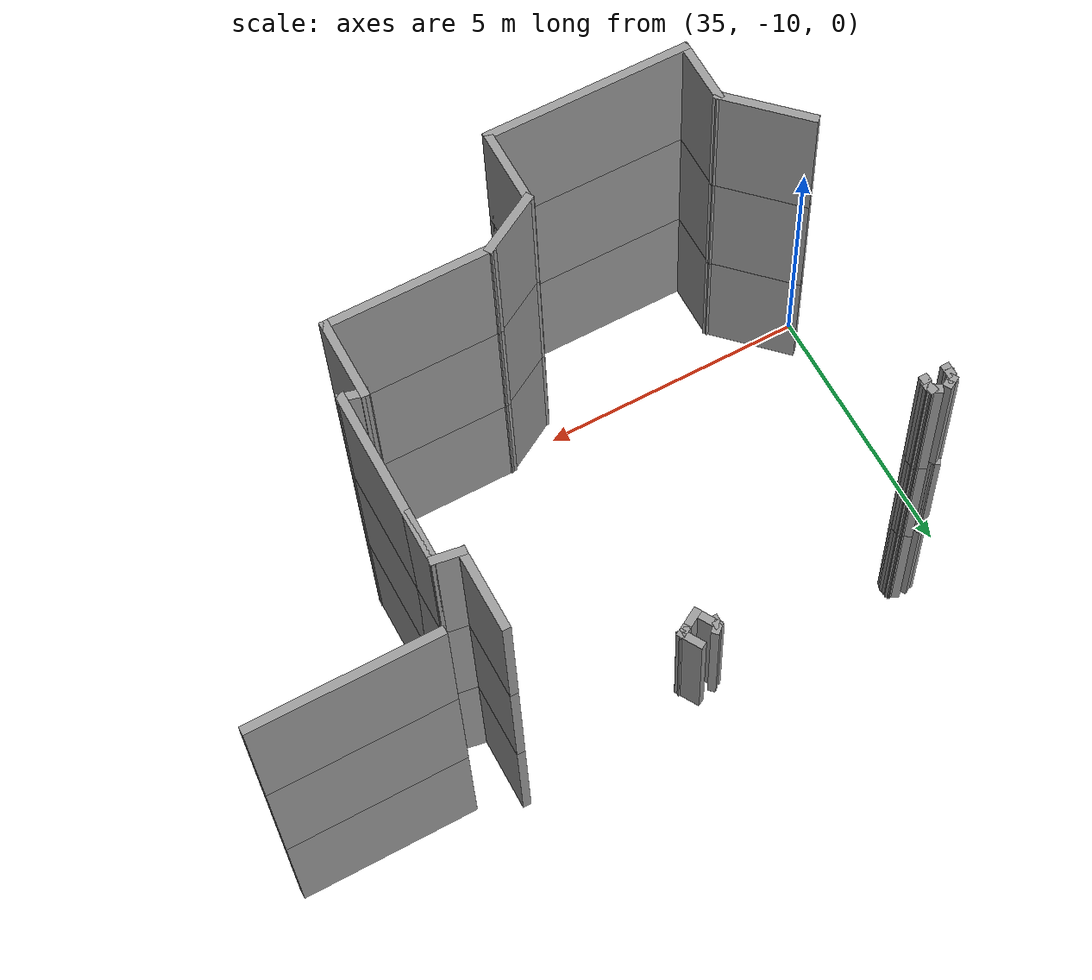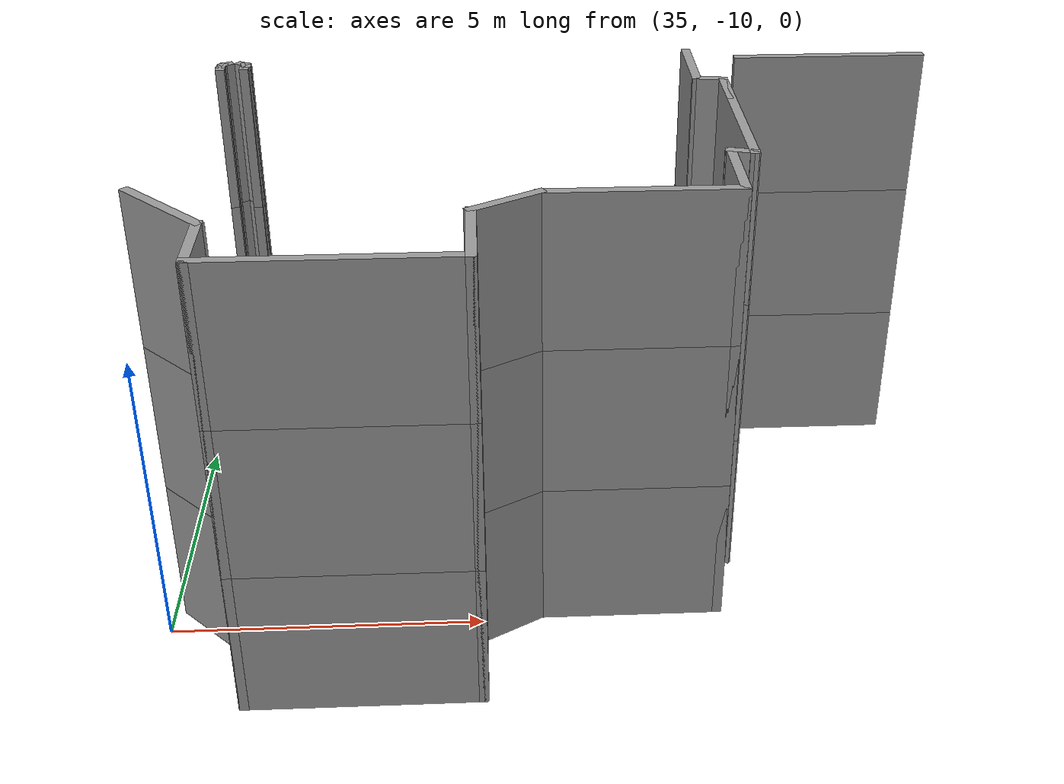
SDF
<sdf version="1.7">
 <model name="mapagazebo">
  <pose>-4.67869 9.01252 0 0 -0 0</pose>
  <link name="Wall_1205">
   <collision name="Wall_1205_Collision">
    <geometry><box><size>3.25 0.15 2.5</size></box></geometry>
    <pose>0 0 1.25 0 -0 0</pose>
   </collision>
   <visual name="Wall_1205_Visual">
    <pose>0 0 1.25 0 -0 0</pose>
    <geometry><box><size>3.25 0.15 2.5</size></box></geometry>
    <material>
     <script><uri>file://media/materials/scripts/gazebo.material</uri><name>Gazebo/Grey</name></script>
     <ambient>1 1 1 1</ambient>
    </material>
    <meta><layer>1</layer></meta>
   </visual>
   <pose>50.7712 -13.4485 2.5 0 -0 3.14159</pose>
  </link>
  <link name="Wall_1208">
   <collision name="Wall_1208_Collision">
    <geometry><box><size>1.5 0.15 2.5</size></box></geometry>
    <pose>0 0 1.25 0 -0 0</pose>
   </collision>
   <visual name="Wall_1208_Visual">
    <pose>0 0 1.25 0 -0 0</pose>
    <geometry><box><size>1.5 0.15 2.5</size></box></geometry>
    <material>
     <script><uri>file://media/materials/scripts/gazebo.material</uri><name>Gazebo/Grey</name></script>
     <ambient>1 1 1 1</ambient>
    </material>
    <meta><layer>1</layer></meta>
   </visual>
   <pose>48.3712 -13.7735 2.5 0 -0 -1.5708</pose>
  </link>
  <link name="Wall_1221">
   <collision name="Wall_1221_Collision">
    <geometry><box><size>1.75 0.15 2.5</size></box></geometry>
    <pose>0 0 1.25 0 -0 0</pose>
   </collision>
   <visual name="Wall_1221_Visual">
    <pose>0 0 1.25 0 -0 0</pose>
    <geometry><box><size>1.75 0.15 2.5</size></box></geometry>
    <material>
     <script><uri>file://media/materials/scripts/gazebo.material</uri><name>Gazebo/Grey</name></script>
     <ambient>1 1 1 1</ambient>
    </material>
    <meta><layer>1</layer></meta>
   </visual>
   <pose>40.493 -19.1127 2.5 0 -0 -0.785398</pose>
  </link>
  <link name="Wall_1222">
   <collision name="Wall_1222_Collision">
    <geometry><box><size>1.25 0.15 2.5</size></box></geometry>
    <pose>0 0 1.25 0 -0 0</pose>
   </collision>
   <visual name="Wall_1222_Visual">
    <pose>0 0 1.25 0 -0 0</pose>
    <geometry><box><size>1.25 0.15 2.5</size></box></geometry>
    <material>
     <script><uri>file://media/materials/scripts/gazebo.material</uri><name>Gazebo/Grey</name></script>
     <ambient>1 1 1 1</ambient>
    </material>
    <meta><layer>1</layer></meta>
   </visual>
   <pose>41.0587 -20.2284 2.5 0 -0 -1.5708</pose>
  </link>
  <link name="Wall_1223">
   <collision name="Wall_1223_Collision">
    <geometry><box><size>3.75 0.15 2.5</size></box></geometry>
    <pose>0 0 1.25 0 -0 0</pose>
   </collision>
   <visual name="Wall_1223_Visual">
    <pose>0 0 1.25 0 -0 0</pose>
    <geometry><box><size>3.75 0.15 2.5</size></box></geometry>
    <material>
     <script><uri>file://media/materials/scripts/gazebo.material</uri><name>Gazebo/Grey</name></script>
     <ambient>1 1 1 1</ambient>
    </material>
    <meta><layer>1</layer></meta>
   </visual>
   <pose>42.8587 -20.7784 2.5 0 -0 0</pose>
  </link>
  <link name="Wall_1224">
   <collision name="Wall_1224_Collision">
    <geometry><box><size>1.5 0.15 2.5</size></box></geometry>
    <pose>0 0 1.25 0 -0 0</pose>
   </collision>
   <visual name="Wall_1224_Visual">
    <pose>0 0 1.25 0 -0 0</pose>
    <geometry><box><size>1.5 0.15 2.5</size></box></geometry>
    <material>
     <script><uri>file://media/materials/scripts/gazebo.material</uri><name>Gazebo/Grey</name></script>
     <ambient>1 1 1 1</ambient>
    </material>
    <meta><layer>1</layer></meta>
   </visual>
   <pose>44.6587 -20.1034 2.5 0 -0 1.5708</pose>
  </link>
  <link name="Wall_1225">
   <collision name="Wall_1225_Collision">
    <geometry><box><size>1.25 0.15 2.5</size></box></geometry>
    <pose>0 0 1.25 0 -0 0</pose>
   </collision>
   <visual name="Wall_1225_Visual">
    <pose>0 0 1.25 0 -0 0</pose>
    <geometry><box><size>1.25 0.15 2.5</size></box></geometry>
    <material>
     <script><uri>file://media/materials/scripts/gazebo.material</uri><name>Gazebo/Grey</name></script>
     <ambient>1 1 1 1</ambient>
    </material>
    <meta><layer>1</layer></meta>
   </visual>
   <pose>45.135 -19.1534 2.5 0 -0 0.523599</pose>
  </link>
  <link name="Wall_1226">
   <collision name="Wall_1226_Collision">
    <geometry><box><size>3 0.15 2.5</size></box></geometry>
    <pose>0 0 1.25 0 -0 0</pose>
   </collision>
   <visual name="Wall_1226_Visual">
    <pose>0 0 1.25 0 -0 0</pose>
    <geometry><box><size>3 0.15 2.5</size></box></geometry>
    <material>
     <script><uri>file://media/materials/scripts/gazebo.material</uri><name>Gazebo/Grey</name></script>
     <ambient>1 1 1 1</ambient>
    </material>
    <meta><layer>1</layer></meta>
   </visual>
   <pose>47.0363 -18.8784 2.5 0 -0 0</pose>
  </link>
  <link name="Wall_1227">
   <collision name="Wall_1227_Collision">
    <geometry><box><size>1.5 0.15 2.5</size></box></geometry>
    <pose>0 0 1.25 0 -0 0</pose>
   </collision>
   <visual name="Wall_1227_Visual">
    <pose>0 0 1.25 0 -0 0</pose>
    <geometry><box><size>1.5 0.15 2.5</size></box></geometry>
    <material>
     <script><uri>file://media/materials/scripts/gazebo.material</uri><name>Gazebo/Grey</name></script>
     <ambient>1 1 1 1</ambient>
    </material>
    <meta><layer>1</layer></meta>
   </visual>
   <pose>48.4613 -18.2034 2.5 0 -0 1.5708</pose>
  </link>
  <link name="Wall_1228">
   <collision name="Wall_1228_Collision">
    <geometry><box><size>0.5 0.15 2.5</size></box></geometry>
    <pose>0 0 1.25 0 -0 0</pose>
   </collision>
   <visual name="Wall_1228_Visual">
    <pose>0 0 1.25 0 -0 0</pose>
    <geometry><box><size>0.5 0.15 2.5</size></box></geometry>
    <material>
     <script><uri>file://media/materials/scripts/gazebo.material</uri><name>Gazebo/Grey</name></script>
     <ambient>1 1 1 1</ambient>
    </material>
    <meta><layer>1</layer></meta>
   </visual>
   <pose>48.6304 -17.5737 2.5 0 -0 -0.261799</pose>
  </link>
  <link name="Wall_1229">
   <collision name="Wall_1229_Collision">
    <geometry><box><size>3.25 0.15 2.5</size></box></geometry>
    <pose>0 0 1.25 0 -0 0</pose>
   </collision>
   <visual name="Wall_1229_Visual">
    <pose>0 0 1.25 0 -0 0</pose>
    <geometry><box><size>3.25 0.15 2.5</size></box></geometry>
    <material>
     <script><uri>file://media/materials/scripts/gazebo.material</uri><name>Gazebo/Grey</name></script>
     <ambient>1 1 1 1</ambient>
    </material>
    <meta><layer>1</layer></meta>
   </visual>
   <pose>48.7994 -16.069 2.5 0 -0 1.5708</pose>
  </link>
  <link name="Wall_1230">
   <collision name="Wall_1230_Collision">
    <geometry><box><size>1 0.15 2.5</size></box></geometry>
    <pose>0 0 1.25 0 -0 0</pose>
   </collision>
   <visual name="Wall_1230_Visual">
    <pose>0 0 1.25 0 -0 0</pose>
    <geometry><box><size>1 0.15 2.5</size></box></geometry>
    <material>
     <script><uri>file://media/materials/scripts/gazebo.material</uri><name>Gazebo/Grey</name></script>
     <ambient>1 1 1 1</ambient>
    </material>
    <meta><layer>1</layer></meta>
   </visual>
   <pose>48.7994 -14.944 2.5 0 -0 -1.5708</pose>
  </link>
  <link name="Wall_1231">
   <collision name="Wall_1231_Collision">
    <geometry><box><size>0.583953 0.15 2.5</size></box></geometry>
    <pose>0 0 1.25 0 -0 0</pose>
   </collision>
   <visual name="Wall_1231_Visual">
    <pose>0 0 1.25 0 -0 0</pose>
    <geometry><box><size>0.583953 0.15 2.5</size></box></geometry>
    <material>
     <script><uri>file://media/materials/scripts/gazebo.material</uri><name>Gazebo/Grey</name></script>
     <ambient>1 1 1 1</ambient>
    </material>
    <meta><layer>1</layer></meta>
   </visual>
   <pose>48.5853 -14.4838 2.5 0 -0 -0.163228</pose>
  </link>
  <link name="Wall_1377">
   <collision name="Wall_1377_Collision">
    <geometry><box><size>0.25 0.15 2.5</size></box></geometry>
    <pose>0 0 1.25 0 -0 0</pose>
   </collision>
   <visual name="Wall_1377_Visual">
    <pose>0 0 1.25 0 -0 0</pose>
    <geometry><box><size>0.25 0.15 2.5</size></box></geometry>
    <material>
     <script><uri>file://media/materials/scripts/gazebo.material</uri><name>Gazebo/Grey</name></script>
     <ambient>1 1 1 1</ambient>
    </material>
    <meta><layer>1</layer></meta>
   </visual>
   <pose>40.5127 -13.5739 2.5 0 -0 1.5708</pose>
  </link>
  <link name="Wall_1378">
   <collision name="Wall_1378_Collision">
    <geometry><box><size>0.15 0.15 2.5</size></box></geometry>
    <pose>0 0 1.25 0 -0 0</pose>
   </collision>
   <visual name="Wall_1378_Visual">
    <pose>0 0 1.25 0 -0 0</pose>
    <geometry><box><size>0.15 0.15 2.5</size></box></geometry>
    <material>
     <script><uri>file://media/materials/scripts/gazebo.material</uri><name>Gazebo/Grey</name></script>
     <ambient>1 1 1 1</ambient>
    </material>
    <meta><layer>1</layer></meta>
   </visual>
   <pose>40.5127 -13.5239 2.5 0 -0 0</pose>
  </link>
  <link name="Wall_1379">
   <collision name="Wall_1379_Collision">
    <geometry><box><size>0.25 0.15 2.5</size></box></geometry>
    <pose>0 0 1.25 0 -0 0</pose>
   </collision>
   <visual name="Wall_1379_Visual">
    <pose>0 0 1.25 0 -0 0</pose>
    <geometry><box><size>0.25 0.15 2.5</size></box></geometry>
    <material>
     <script><uri>file://media/materials/scripts/gazebo.material</uri><name>Gazebo/Grey</name></script>
     <ambient>1 1 1 1</ambient>
    </material>
    <meta><layer>1</layer></meta>
   </visual>
   <pose>40.5257 -13.4756 2.5 0 -0 1.309</pose>
  </link>
  <link name="Wall_1380">
   <collision name="Wall_1380_Collision">
    <geometry><box><size>0.25 0.15 2.5</size></box></geometry>
    <pose>0 0 1.25 0 -0 0</pose>
   </collision>
   <visual name="Wall_1380_Visual">
    <pose>0 0 1.25 0 -0 0</pose>
    <geometry><box><size>0.25 0.15 2.5</size></box></geometry>
    <material>
     <script><uri>file://media/materials/scripts/gazebo.material</uri><name>Gazebo/Grey</name></script>
     <ambient>1 1 1 1</ambient>
    </material>
    <meta><layer>1</layer></meta>
   </visual>
   <pose>40.5636 -13.384 2.5 0 -0 1.0472</pose>
  </link>
  <link name="Wall_1381">
   <collision name="Wall_1381_Collision">
    <geometry><box><size>0.25 0.15 2.5</size></box></geometry>
    <pose>0 0 1.25 0 -0 0</pose>
   </collision>
   <visual name="Wall_1381_Visual">
    <pose>0 0 1.25 0 -0 0</pose>
    <geometry><box><size>0.25 0.15 2.5</size></box></geometry>
    <material>
     <script><uri>file://media/materials/scripts/gazebo.material</uri><name>Gazebo/Grey</name></script>
     <ambient>1 1 1 1</ambient>
    </material>
    <meta><layer>1</layer></meta>
   </visual>
   <pose>40.5819 -13.4023 2.5 0 -0 0.523599</pose>
  </link>
  <link name="Wall_1385">
   <collision name="Wall_1385_Collision">
    <geometry><box><size>0.25 0.15 2.5</size></box></geometry>
    <pose>0 0 1.25 0 -0 0</pose>
   </collision>
   <visual name="Wall_1385_Visual">
    <pose>0 0 1.25 0 -0 0</pose>
    <geometry><box><size>0.25 0.15 2.5</size></box></geometry>
    <material>
     <script><uri>file://media/materials/scripts/gazebo.material</uri><name>Gazebo/Grey</name></script>
     <ambient>1 1 1 1</ambient>
    </material>
    <meta><layer>1</layer></meta>
   </visual>
   <pose>40.8617 -13.4023 2.5 0 -0 -0.523599</pose>
  </link>
  <link name="Wall_1386">
   <collision name="Wall_1386_Collision">
    <geometry><box><size>0.15 0.15 2.5</size></box></geometry>
    <pose>0 0 1.25 0 -0 0</pose>
   </collision>
   <visual name="Wall_1386_Visual">
    <pose>0 0 1.25 0 -0 0</pose>
    <geometry><box><size>0.15 0.15 2.5</size></box></geometry>
    <material>
     <script><uri>file://media/materials/scripts/gazebo.material</uri><name>Gazebo/Grey</name></script>
     <ambient>1 1 1 1</ambient>
    </material>
    <meta><layer>1</layer></meta>
   </visual>
   <pose>40.905 -13.4273 2.5 0 -0 0</pose>
  </link>
  <link name="Wall_1387">
   <collision name="Wall_1387_Collision">
    <geometry><box><size>0.15 0.15 2.5</size></box></geometry>
    <pose>0 0 1.25 0 -0 0</pose>
   </collision>
   <visual name="Wall_1387_Visual">
    <pose>0 0 1.25 0 -0 0</pose>
    <geometry><box><size>0.15 0.15 2.5</size></box></geometry>
    <material>
     <script><uri>file://media/materials/scripts/gazebo.material</uri><name>Gazebo/Grey</name></script>
     <ambient>1 1 1 1</ambient>
    </material>
    <meta><layer>1</layer></meta>
   </visual>
   <pose>40.905 -13.4273 2.5 0 -0 0</pose>
  </link>
  <link name="Wall_1388">
   <collision name="Wall_1388_Collision">
    <geometry><box><size>0.25 0.15 2.5</size></box></geometry>
    <pose>0 0 1.25 0 -0 0</pose>
   </collision>
   <visual name="Wall_1388_Visual">
    <pose>0 0 1.25 0 -0 0</pose>
    <geometry><box><size>0.25 0.15 2.5</size></box></geometry>
    <material>
     <script><uri>file://media/materials/scripts/gazebo.material</uri><name>Gazebo/Grey</name></script>
     <ambient>1 1 1 1</ambient>
    </material>
    <meta><layer>1</layer></meta>
   </visual>
   <pose>40.918 -13.4756 2.5 0 -0 -1.309</pose>
  </link>
  <link name="Wall_1389">
   <collision name="Wall_1389_Collision">
    <geometry><box><size>0.15 0.15 2.5</size></box></geometry>
    <pose>0 0 1.25 0 -0 0</pose>
   </collision>
   <visual name="Wall_1389_Visual">
    <pose>0 0 1.25 0 -0 0</pose>
    <geometry><box><size>0.15 0.15 2.5</size></box></geometry>
    <material>
     <script><uri>file://media/materials/scripts/gazebo.material</uri><name>Gazebo/Grey</name></script>
     <ambient>1 1 1 1</ambient>
    </material>
    <meta><layer>1</layer></meta>
   </visual>
   <pose>40.9309 -13.5239 2.5 0 -0 0</pose>
  </link>
  <link name="Wall_1390">
   <collision name="Wall_1390_Collision">
    <geometry><box><size>0.15 0.15 2.5</size></box></geometry>
    <pose>0 0 1.25 0 -0 0</pose>
   </collision>
   <visual name="Wall_1390_Visual">
    <pose>0 0 1.25 0 -0 0</pose>
    <geometry><box><size>0.15 0.15 2.5</size></box></geometry>
    <material>
     <script><uri>file://media/materials/scripts/gazebo.material</uri><name>Gazebo/Grey</name></script>
     <ambient>1 1 1 1</ambient>
    </material>
    <meta><layer>1</layer></meta>
   </visual>
   <pose>40.905 -13.6205 2.5 0 -0 0</pose>
  </link>
  <link name="Wall_1391">
   <collision name="Wall_1391_Collision">
    <geometry><box><size>0.15 0.15 2.5</size></box></geometry>
    <pose>0 0 1.25 0 -0 0</pose>
   </collision>
   <visual name="Wall_1391_Visual">
    <pose>0 0 1.25 0 -0 0</pose>
    <geometry><box><size>0.15 0.15 2.5</size></box></geometry>
    <material>
     <script><uri>file://media/materials/scripts/gazebo.material</uri><name>Gazebo/Grey</name></script>
     <ambient>1 1 1 1</ambient>
    </material>
    <meta><layer>1</layer></meta>
   </visual>
   <pose>40.905 -13.6205 2.5 0 -0 0</pose>
  </link>
  <link name="Wall_1829">
   <collision name="Wall_1829_Collision">
    <geometry><box><size>3.25 0.15 2.5</size></box></geometry>
    <pose>0 0 1.25 0 -0 0</pose>
   </collision>
   <visual name="Wall_1829_Visual">
    <pose>0 0 1.25 0 -0 0</pose>
    <geometry><box><size>3.25 0.15 2.5</size></box></geometry>
    <material>
     <script><uri>file://media/materials/scripts/gazebo.material</uri><name>Gazebo/Grey</name></script>
     <ambient>1 1 1 1</ambient>
    </material>
    <meta><layer>2</layer></meta>
   </visual>
   <pose>50.7712 -13.4485 5 0 -0 3.14159</pose>
  </link>
  <link name="Wall_1832">
   <collision name="Wall_1832_Collision">
    <geometry><box><size>1.5 0.15 2.5</size></box></geometry>
    <pose>0 0 1.25 0 -0 0</pose>
   </collision>
   <visual name="Wall_1832_Visual">
    <pose>0 0 1.25 0 -0 0</pose>
    <geometry><box><size>1.5 0.15 2.5</size></box></geometry>
    <material>
     <script><uri>file://media/materials/scripts/gazebo.material</uri><name>Gazebo/Grey</name></script>
     <ambient>1 1 1 1</ambient>
    </material>
    <meta><layer>2</layer></meta>
   </visual>
   <pose>48.3712 -13.7735 5 0 -0 -1.5708</pose>
  </link>
  <link name="Wall_1845">
   <collision name="Wall_1845_Collision">
    <geometry><box><size>1.75 0.15 2.5</size></box></geometry>
    <pose>0 0 1.25 0 -0 0</pose>
   </collision>
   <visual name="Wall_1845_Visual">
    <pose>0 0 1.25 0 -0 0</pose>
    <geometry><box><size>1.75 0.15 2.5</size></box></geometry>
    <material>
     <script><uri>file://media/materials/scripts/gazebo.material</uri><name>Gazebo/Grey</name></script>
     <ambient>1 1 1 1</ambient>
    </material>
    <meta><layer>2</layer></meta>
   </visual>
   <pose>40.493 -19.1127 5 0 -0 -0.785398</pose>
  </link>
  <link name="Wall_1846">
   <collision name="Wall_1846_Collision">
    <geometry><box><size>1.25 0.15 2.5</size></box></geometry>
    <pose>0 0 1.25 0 -0 0</pose>
   </collision>
   <visual name="Wall_1846_Visual">
    <pose>0 0 1.25 0 -0 0</pose>
    <geometry><box><size>1.25 0.15 2.5</size></box></geometry>
    <material>
     <script><uri>file://media/materials/scripts/gazebo.material</uri><name>Gazebo/Grey</name></script>
     <ambient>1 1 1 1</ambient>
    </material>
    <meta><layer>2</layer></meta>
   </visual>
   <pose>41.0587 -20.2284 5 0 -0 -1.5708</pose>
  </link>
  <link name="Wall_1847">
   <collision name="Wall_1847_Collision">
    <geometry><box><size>3.75 0.15 2.5</size></box></geometry>
    <pose>0 0 1.25 0 -0 0</pose>
   </collision>
   <visual name="Wall_1847_Visual">
    <pose>0 0 1.25 0 -0 0</pose>
    <geometry><box><size>3.75 0.15 2.5</size></box></geometry>
    <material>
     <script><uri>file://media/materials/scripts/gazebo.material</uri><name>Gazebo/Grey</name></script>
     <ambient>1 1 1 1</ambient>
    </material>
    <meta><layer>2</layer></meta>
   </visual>
   <pose>42.8587 -20.7784 5 0 -0 0</pose>
  </link>
  <link name="Wall_1848">
   <collision name="Wall_1848_Collision">
    <geometry><box><size>1.5 0.15 2.5</size></box></geometry>
    <pose>0 0 1.25 0 -0 0</pose>
   </collision>
   <visual name="Wall_1848_Visual">
    <pose>0 0 1.25 0 -0 0</pose>
    <geometry><box><size>1.5 0.15 2.5</size></box></geometry>
    <material>
     <script><uri>file://media/materials/scripts/gazebo.material</uri><name>Gazebo/Grey</name></script>
     <ambient>1 1 1 1</ambient>
    </material>
    <meta><layer>2</layer></meta>
   </visual>
   <pose>44.6587 -20.1034 5 0 -0 1.5708</pose>
  </link>
  <link name="Wall_1849">
   <collision name="Wall_1849_Collision">
    <geometry><box><size>1.25 0.15 2.5</size></box></geometry>
    <pose>0 0 1.25 0 -0 0</pose>
   </collision>
   <visual name="Wall_1849_Visual">
    <pose>0 0 1.25 0 -0 0</pose>
    <geometry><box><size>1.25 0.15 2.5</size></box></geometry>
    <material>
     <script><uri>file://media/materials/scripts/gazebo.material</uri><name>Gazebo/Grey</name></script>
     <ambient>1 1 1 1</ambient>
    </material>
    <meta><layer>2</layer></meta>
   </visual>
   <pose>45.135 -19.1534 5 0 -0 0.523599</pose>
  </link>
  <link name="Wall_1850">
   <collision name="Wall_1850_Collision">
    <geometry><box><size>3 0.15 2.5</size></box></geometry>
    <pose>0 0 1.25 0 -0 0</pose>
   </collision>
   <visual name="Wall_1850_Visual">
    <pose>0 0 1.25 0 -0 0</pose>
    <geometry><box><size>3 0.15 2.5</size></box></geometry>
    <material>
     <script><uri>file://media/materials/scripts/gazebo.material</uri><name>Gazebo/Grey</name></script>
     <ambient>1 1 1 1</ambient>
    </material>
    <meta><layer>2</layer></meta>
   </visual>
   <pose>47.0363 -18.8784 5 0 -0 0</pose>
  </link>
  <link name="Wall_1851">
   <collision name="Wall_1851_Collision">
    <geometry><box><size>1.5 0.15 2.5</size></box></geometry>
    <pose>0 0 1.25 0 -0 0</pose>
   </collision>
   <visual name="Wall_1851_Visual">
    <pose>0 0 1.25 0 -0 0</pose>
    <geometry><box><size>1.5 0.15 2.5</size></box></geometry>
    <material>
     <script><uri>file://media/materials/scripts/gazebo.material</uri><name>Gazebo/Grey</name></script>
     <ambient>1 1 1 1</ambient>
    </material>
    <meta><layer>2</layer></meta>
   </visual>
   <pose>48.4613 -18.2034 5 0 -0 1.5708</pose>
  </link>
  <link name="Wall_1852">
   <collision name="Wall_1852_Collision">
    <geometry><box><size>0.5 0.15 2.5</size></box></geometry>
    <pose>0 0 1.25 0 -0 0</pose>
   </collision>
   <visual name="Wall_1852_Visual">
    <pose>0 0 1.25 0 -0 0</pose>
    <geometry><box><size>0.5 0.15 2.5</size></box></geometry>
    <material>
     <script><uri>file://media/materials/scripts/gazebo.material</uri><name>Gazebo/Grey</name></script>
     <ambient>1 1 1 1</ambient>
    </material>
    <meta><layer>2</layer></meta>
   </visual>
   <pose>48.6304 -17.5737 5 0 -0 -0.261799</pose>
  </link>
  <link name="Wall_1853">
   <collision name="Wall_1853_Collision">
    <geometry><box><size>3.25 0.15 2.5</size></box></geometry>
    <pose>0 0 1.25 0 -0 0</pose>
   </collision>
   <visual name="Wall_1853_Visual">
    <pose>0 0 1.25 0 -0 0</pose>
    <geometry><box><size>3.25 0.15 2.5</size></box></geometry>
    <material>
     <script><uri>file://media/materials/scripts/gazebo.material</uri><name>Gazebo/Grey</name></script>
     <ambient>1 1 1 1</ambient>
    </material>
    <meta><layer>2</layer></meta>
   </visual>
   <pose>48.7994 -16.069 5 0 -0 1.5708</pose>
  </link>
  <link name="Wall_1854">
   <collision name="Wall_1854_Collision">
    <geometry><box><size>1 0.15 2.5</size></box></geometry>
    <pose>0 0 1.25 0 -0 0</pose>
   </collision>
   <visual name="Wall_1854_Visual">
    <pose>0 0 1.25 0 -0 0</pose>
    <geometry><box><size>1 0.15 2.5</size></box></geometry>
    <material>
     <script><uri>file://media/materials/scripts/gazebo.material</uri><name>Gazebo/Grey</name></script>
     <ambient>1 1 1 1</ambient>
    </material>
    <meta><layer>2</layer></meta>
   </visual>
   <pose>48.7994 -14.944 5 0 -0 -1.5708</pose>
  </link>
  <link name="Wall_1855">
   <collision name="Wall_1855_Collision">
    <geometry><box><size>0.583953 0.15 2.5</size></box></geometry>
    <pose>0 0 1.25 0 -0 0</pose>
   </collision>
   <visual name="Wall_1855_Visual">
    <pose>0 0 1.25 0 -0 0</pose>
    <geometry><box><size>0.583953 0.15 2.5</size></box></geometry>
    <material>
     <script><uri>file://media/materials/scripts/gazebo.material</uri><name>Gazebo/Grey</name></script>
     <ambient>1 1 1 1</ambient>
    </material>
    <meta><layer>2</layer></meta>
   </visual>
   <pose>48.5853 -14.4838 5 0 -0 -0.163228</pose>
  </link>
  <link name="Wall_2001">
   <collision name="Wall_2001_Collision">
    <geometry><box><size>0.25 0.15 2.5</size></box></geometry>
    <pose>0 0 1.25 0 -0 0</pose>
   </collision>
   <visual name="Wall_2001_Visual">
    <pose>0 0 1.25 0 -0 0</pose>
    <geometry><box><size>0.25 0.15 2.5</size></box></geometry>
    <material>
     <script><uri>file://media/materials/scripts/gazebo.material</uri><name>Gazebo/Grey</name></script>
     <ambient>1 1 1 1</ambient>
    </material>
    <meta><layer>2</layer></meta>
   </visual>
   <pose>40.5127 -13.5739 5 0 -0 1.5708</pose>
  </link>
  <link name="Wall_2002">
   <collision name="Wall_2002_Collision">
    <geometry><box><size>0.15 0.15 2.5</size></box></geometry>
    <pose>0 0 1.25 0 -0 0</pose>
   </collision>
   <visual name="Wall_2002_Visual">
    <pose>0 0 1.25 0 -0 0</pose>
    <geometry><box><size>0.15 0.15 2.5</size></box></geometry>
    <material>
     <script><uri>file://media/materials/scripts/gazebo.material</uri><name>Gazebo/Grey</name></script>
     <ambient>1 1 1 1</ambient>
    </material>
    <meta><layer>2</layer></meta>
   </visual>
   <pose>40.5127 -13.5239 5 0 -0 0</pose>
  </link>
  <link name="Wall_2003">
   <collision name="Wall_2003_Collision">
    <geometry><box><size>0.25 0.15 2.5</size></box></geometry>
    <pose>0 0 1.25 0 -0 0</pose>
   </collision>
   <visual name="Wall_2003_Visual">
    <pose>0 0 1.25 0 -0 0</pose>
    <geometry><box><size>0.25 0.15 2.5</size></box></geometry>
    <material>
     <script><uri>file://media/materials/scripts/gazebo.material</uri><name>Gazebo/Grey</name></script>
     <ambient>1 1 1 1</ambient>
    </material>
    <meta><layer>2</layer></meta>
   </visual>
   <pose>40.5257 -13.4756 5 0 -0 1.309</pose>
  </link>
  <link name="Wall_2005">
   <collision name="Wall_2005_Collision">
    <geometry><box><size>0.25 0.15 2.5</size></box></geometry>
    <pose>0 0 1.25 0 -0 0</pose>
   </collision>
   <visual name="Wall_2005_Visual">
    <pose>0 0 1.25 0 -0 0</pose>
    <geometry><box><size>0.25 0.15 2.5</size></box></geometry>
    <material>
     <script><uri>file://media/materials/scripts/gazebo.material</uri><name>Gazebo/Grey</name></script>
     <ambient>1 1 1 1</ambient>
    </material>
    <meta><layer>2</layer></meta>
   </visual>
   <pose>40.5819 -13.4023 5 0 -0 0.523599</pose>
  </link>
  <link name="Wall_2009">
   <collision name="Wall_2009_Collision">
    <geometry><box><size>0.25 0.15 2.5</size></box></geometry>
    <pose>0 0 1.25 0 -0 0</pose>
   </collision>
   <visual name="Wall_2009_Visual">
    <pose>0 0 1.25 0 -0 0</pose>
    <geometry><box><size>0.25 0.15 2.5</size></box></geometry>
    <material>
     <script><uri>file://media/materials/scripts/gazebo.material</uri><name>Gazebo/Grey</name></script>
     <ambient>1 1 1 1</ambient>
    </material>
    <meta><layer>2</layer></meta>
   </visual>
   <pose>40.8617 -13.4023 5 0 -0 -0.523599</pose>
  </link>
  <link name="Wall_2010">
   <collision name="Wall_2010_Collision">
    <geometry><box><size>0.15 0.15 2.5</size></box></geometry>
    <pose>0 0 1.25 0 -0 0</pose>
   </collision>
   <visual name="Wall_2010_Visual">
    <pose>0 0 1.25 0 -0 0</pose>
    <geometry><box><size>0.15 0.15 2.5</size></box></geometry>
    <material>
     <script><uri>file://media/materials/scripts/gazebo.material</uri><name>Gazebo/Grey</name></script>
     <ambient>1 1 1 1</ambient>
    </material>
    <meta><layer>2</layer></meta>
   </visual>
   <pose>40.905 -13.4273 5 0 -0 0</pose>
  </link>
  <link name="Wall_2011">
   <collision name="Wall_2011_Collision">
    <geometry><box><size>0.15 0.15 2.5</size></box></geometry>
    <pose>0 0 1.25 0 -0 0</pose>
   </collision>
   <visual name="Wall_2011_Visual">
    <pose>0 0 1.25 0 -0 0</pose>
    <geometry><box><size>0.15 0.15 2.5</size></box></geometry>
    <material>
     <script><uri>file://media/materials/scripts/gazebo.material</uri><name>Gazebo/Grey</name></script>
     <ambient>1 1 1 1</ambient>
    </material>
    <meta><layer>2</layer></meta>
   </visual>
   <pose>40.905 -13.4273 5 0 -0 0</pose>
  </link>
  <link name="Wall_2012">
   <collision name="Wall_2012_Collision">
    <geometry><box><size>0.25 0.15 2.5</size></box></geometry>
    <pose>0 0 1.25 0 -0 0</pose>
   </collision>
   <visual name="Wall_2012_Visual">
    <pose>0 0 1.25 0 -0 0</pose>
    <geometry><box><size>0.25 0.15 2.5</size></box></geometry>
    <material>
     <script><uri>file://media/materials/scripts/gazebo.material</uri><name>Gazebo/Grey</name></script>
     <ambient>1 1 1 1</ambient>
    </material>
    <meta><layer>2</layer></meta>
   </visual>
   <pose>40.918 -13.4756 5 0 -0 -1.309</pose>
  </link>
  <link name="Wall_2013">
   <collision name="Wall_2013_Collision">
    <geometry><box><size>0.15 0.15 2.5</size></box></geometry>
    <pose>0 0 1.25 0 -0 0</pose>
   </collision>
   <visual name="Wall_2013_Visual">
    <pose>0 0 1.25 0 -0 0</pose>
    <geometry><box><size>0.15 0.15 2.5</size></box></geometry>
    <material>
     <script><uri>file://media/materials/scripts/gazebo.material</uri><name>Gazebo/Grey</name></script>
     <ambient>1 1 1 1</ambient>
    </material>
    <meta><layer>2</layer></meta>
   </visual>
   <pose>40.9309 -13.5239 5 0 -0 0</pose>
  </link>
  <link name="Wall_2014">
   <collision name="Wall_2014_Collision">
    <geometry><box><size>0.15 0.15 2.5</size></box></geometry>
    <pose>0 0 1.25 0 -0 0</pose>
   </collision>
   <visual name="Wall_2014_Visual">
    <pose>0 0 1.25 0 -0 0</pose>
    <geometry><box><size>0.15 0.15 2.5</size></box></geometry>
    <material>
     <script><uri>file://media/materials/scripts/gazebo.material</uri><name>Gazebo/Grey</name></script>
     <ambient>1 1 1 1</ambient>
    </material>
    <meta><layer>2</layer></meta>
   </visual>
   <pose>40.905 -13.6205 5 0 -0 0</pose>
  </link>
  <link name="Wall_2015">
   <collision name="Wall_2015_Collision">
    <geometry><box><size>0.15 0.15 2.5</size></box></geometry>
    <pose>0 0 1.25 0 -0 0</pose>
   </collision>
   <visual name="Wall_2015_Visual">
    <pose>0 0 1.25 0 -0 0</pose>
    <geometry><box><size>0.15 0.15 2.5</size></box></geometry>
    <material>
     <script><uri>file://media/materials/scripts/gazebo.material</uri><name>Gazebo/Grey</name></script>
     <ambient>1 1 1 1</ambient>
    </material>
    <meta><layer>2</layer></meta>
   </visual>
   <pose>40.905 -13.6205 5 0 -0 0</pose>
  </link>
  <link name="Wall_2016">
   <collision name="Wall_2016_Collision">
    <geometry><box><size>0.5 0.15 2.5</size></box></geometry>
    <pose>0 0 1.25 0 -0 0</pose>
   </collision>
   <visual name="Wall_2016_Visual">
    <pose>0 0 1.25 0 -0 0</pose>
    <geometry><box><size>0.5 0.15 2.5</size></box></geometry>
    <material>
     <script><uri>file://media/materials/scripts/gazebo.material</uri><name>Gazebo/Grey</name></script>
     <ambient>1 1 1 1</ambient>
    </material>
    <meta><layer>0</layer></meta>
   </visual>
   <pose>40.6002 -13.6755 0 0 -0 -1.0472</pose>
  </link>
  <link name="Wall_2017">
   <collision name="Wall_2017_Collision">
    <geometry><box><size>0.44976 0.15 2.5</size></box></geometry>
    <pose>0 0 1.25 0 -0 0</pose>
   </collision>
   <visual name="Wall_2017_Visual">
    <pose>0 0 1.25 0 -0 0</pose>
    <geometry><box><size>0.44976 0.15 2.5</size></box></geometry>
    <material>
     <script><uri>file://media/materials/scripts/gazebo.material</uri><name>Gazebo/Grey</name></script>
     <ambient>1 1 1 1</ambient>
    </material>
    <meta><layer>0</layer></meta>
   </visual>
   <pose>40.7964 -13.7238 0 0 -0 0.760023</pose>
  </link>
  <link name="Wall_2019">
   <collision name="Wall_2019_Collision">
    <geometry><box><size>0.25 0.15 2.5</size></box></geometry>
    <pose>0 0 1.25 0 -0 0</pose>
   </collision>
   <visual name="Wall_2019_Visual">
    <pose>0 0 1.25 0 -0 0</pose>
    <geometry><box><size>0.25 0.15 2.5</size></box></geometry>
    <material>
     <script><uri>file://media/materials/scripts/gazebo.material</uri><name>Gazebo/Grey</name></script>
     <ambient>1 1 1 1</ambient>
    </material>
    <meta><layer>0</layer></meta>
   </visual>
   <pose>44.4606 -13.505 0 0 -0 1.5708</pose>
  </link>
  <link name="Wall_2020">
   <collision name="Wall_2020_Collision">
    <geometry><box><size>0.25 0.15 2.5</size></box></geometry>
    <pose>0 0 1.25 0 -0 0</pose>
   </collision>
   <visual name="Wall_2020_Visual">
    <pose>0 0 1.25 0 -0 0</pose>
    <geometry><box><size>0.25 0.15 2.5</size></box></geometry>
    <material>
     <script><uri>file://media/materials/scripts/gazebo.material</uri><name>Gazebo/Grey</name></script>
     <ambient>1 1 1 1</ambient>
    </material>
    <meta><layer>0</layer></meta>
   </visual>
   <pose>44.496 -13.4196 0 0 -0 0.785398</pose>
  </link>
  <link name="Wall_2023">
   <collision name="Wall_2023_Collision">
    <geometry><box><size>0.5 0.15 2.5</size></box></geometry>
    <pose>0 0 1.25 0 -0 0</pose>
   </collision>
   <visual name="Wall_2023_Visual">
    <pose>0 0 1.25 0 -0 0</pose>
    <geometry><box><size>0.5 0.15 2.5</size></box></geometry>
    <material>
     <script><uri>file://media/materials/scripts/gazebo.material</uri><name>Gazebo/Grey</name></script>
     <ambient>1 1 1 1</ambient>
    </material>
    <meta><layer>0</layer></meta>
   </visual>
   <pose>44.9719 -13.4474 0 0 -0 -1.0472</pose>
  </link>
  <link name="Wall_2024">
   <collision name="Wall_2024_Collision">
    <geometry><box><size>0.15 0.15 2.5</size></box></geometry>
    <pose>0 0 1.25 0 -0 0</pose>
   </collision>
   <visual name="Wall_2024_Visual">
    <pose>0 0 1.25 0 -0 0</pose>
    <geometry><box><size>0.15 0.15 2.5</size></box></geometry>
    <material>
     <script><uri>file://media/materials/scripts/gazebo.material</uri><name>Gazebo/Grey</name></script>
     <ambient>1 1 1 1</ambient>
    </material>
    <meta><layer>0</layer></meta>
   </visual>
   <pose>45.0594 -13.599 0 0 -0 0</pose>
  </link>
  <link name="Wall_2025">
   <collision name="Wall_2025_Collision">
    <geometry><box><size>0.25 0.15 2.5</size></box></geometry>
    <pose>0 0 1.25 0 -0 0</pose>
   </collision>
   <visual name="Wall_2025_Visual">
    <pose>0 0 1.25 0 -0 0</pose>
    <geometry><box><size>0.25 0.15 2.5</size></box></geometry>
    <material>
     <script><uri>file://media/materials/scripts/gazebo.material</uri><name>Gazebo/Grey</name></script>
     <ambient>1 1 1 1</ambient>
    </material>
    <meta><layer>0</layer></meta>
   </visual>
   <pose>45.0161 -13.624 0 0 -0 -2.61799</pose>
  </link>
  <link name="Wall_2026">
   <collision name="Wall_2026_Collision">
    <geometry><box><size>0.5 0.15 2.5</size></box></geometry>
    <pose>0 0 1.25 0 -0 0</pose>
   </collision>
   <visual name="Wall_2026_Visual">
    <pose>0 0 1.25 0 -0 0</pose>
    <geometry><box><size>0.5 0.15 2.5</size></box></geometry>
    <material>
     <script><uri>file://media/materials/scripts/gazebo.material</uri><name>Gazebo/Grey</name></script>
     <ambient>1 1 1 1</ambient>
    </material>
    <meta><layer>0</layer></meta>
   </visual>
   <pose>44.8213 -13.7365 0 0 -0 -2.61799</pose>
  </link>
  <link name="Wall_2027">
   <collision name="Wall_2027_Collision">
    <geometry><box><size>0.574132 0.15 2.5</size></box></geometry>
    <pose>0 0 1.25 0 -0 0</pose>
   </collision>
   <visual name="Wall_2027_Visual">
    <pose>0 0 1.25 0 -0 0</pose>
    <geometry><box><size>0.574132 0.15 2.5</size></box></geometry>
    <material>
     <script><uri>file://media/materials/scripts/gazebo.material</uri><name>Gazebo/Grey</name></script>
     <ambient>1 1 1 1</ambient>
    </material>
    <meta><layer>0</layer></meta>
   </visual>
   <pose>44.5652 -13.6395 0 0 -0 2.08636</pose>
  </link>
  <link name="Wall_2028">
   <collision name="Wall_2028_Collision">
    <geometry><box><size>0.15 0.15 2.5</size></box></geometry>
    <pose>0 0 1.25 0 -0 0</pose>
   </collision>
   <visual name="Wall_2028_Visual">
    <pose>0 0 1.25 0 -0 0</pose>
    <geometry><box><size>0.15 0.15 2.5</size></box></geometry>
    <material>
     <script><uri>file://media/materials/scripts/gazebo.material</uri><name>Gazebo/Grey</name></script>
     <ambient>1 1 1 1</ambient>
    </material>
    <meta><layer>0</layer></meta>
   </visual>
   <pose>44.4606 -13.455 0 0 -0 0</pose>
  </link>
  <link name="Wall_537">
   <collision name="Wall_537_Collision">
    <geometry><box><size>3.25 0.15 2.5</size></box></geometry>
    <pose>0 0 1.25 0 -0 0</pose>
   </collision>
   <visual name="Wall_537_Visual">
    <pose>0 0 1.25 0 -0 0</pose>
    <geometry><box><size>3.25 0.15 2.5</size></box></geometry>
    <material>
     <script><uri>file://media/materials/scripts/gazebo.material</uri><name>Gazebo/Grey</name></script>
     <ambient>1 1 1 1</ambient>
    </material>
    <meta><layer>0</layer></meta>
   </visual>
   <pose>50.7712 -13.4485 0 0 -0 3.14159</pose>
  </link>
  <link name="Wall_540">
   <collision name="Wall_540_Collision">
    <geometry><box><size>1.5 0.15 2.5</size></box></geometry>
    <pose>0 0 1.25 0 -0 0</pose>
   </collision>
   <visual name="Wall_540_Visual">
    <pose>0 0 1.25 0 -0 0</pose>
    <geometry><box><size>1.5 0.15 2.5</size></box></geometry>
    <material>
     <script><uri>file://media/materials/scripts/gazebo.material</uri><name>Gazebo/Grey</name></script>
     <ambient>1 1 1 1</ambient>
    </material>
    <meta><layer>0</layer></meta>
   </visual>
   <pose>48.3712 -13.7735 0 0 -0 -1.5708</pose>
  </link>
  <link name="Wall_556">
   <collision name="Wall_556_Collision">
    <geometry><box><size>1.75 0.15 2.5</size></box></geometry>
    <pose>0 0 1.25 0 -0 0</pose>
   </collision>
   <visual name="Wall_556_Visual">
    <pose>0 0 1.25 0 -0 0</pose>
    <geometry><box><size>1.75 0.15 2.5</size></box></geometry>
    <material>
     <script><uri>file://media/materials/scripts/gazebo.material</uri><name>Gazebo/Grey</name></script>
     <ambient>1 1 1 1</ambient>
    </material>
    <meta><layer>0</layer></meta>
   </visual>
   <pose>40.493 -19.1127 0 0 -0 -0.785398</pose>
  </link>
  <link name="Wall_557">
   <collision name="Wall_557_Collision">
    <geometry><box><size>1.25 0.15 2.5</size></box></geometry>
    <pose>0 0 1.25 0 -0 0</pose>
   </collision>
   <visual name="Wall_557_Visual">
    <pose>0 0 1.25 0 -0 0</pose>
    <geometry><box><size>1.25 0.15 2.5</size></box></geometry>
    <material>
     <script><uri>file://media/materials/scripts/gazebo.material</uri><name>Gazebo/Grey</name></script>
     <ambient>1 1 1 1</ambient>
    </material>
    <meta><layer>0</layer></meta>
   </visual>
   <pose>41.0587 -20.2284 0 0 -0 -1.5708</pose>
  </link>
  <link name="Wall_558">
   <collision name="Wall_558_Collision">
    <geometry><box><size>3.75 0.15 2.5</size></box></geometry>
    <pose>0 0 1.25 0 -0 0</pose>
   </collision>
   <visual name="Wall_558_Visual">
    <pose>0 0 1.25 0 -0 0</pose>
    <geometry><box><size>3.75 0.15 2.5</size></box></geometry>
    <material>
     <script><uri>file://media/materials/scripts/gazebo.material</uri><name>Gazebo/Grey</name></script>
     <ambient>1 1 1 1</ambient>
    </material>
    <meta><layer>0</layer></meta>
   </visual>
   <pose>42.8587 -20.7784 0 0 -0 0</pose>
  </link>
  <link name="Wall_559">
   <collision name="Wall_559_Collision">
    <geometry><box><size>1.5 0.15 2.5</size></box></geometry>
    <pose>0 0 1.25 0 -0 0</pose>
   </collision>
   <visual name="Wall_559_Visual">
    <pose>0 0 1.25 0 -0 0</pose>
    <geometry><box><size>1.5 0.15 2.5</size></box></geometry>
    <material>
     <script><uri>file://media/materials/scripts/gazebo.material</uri><name>Gazebo/Grey</name></script>
     <ambient>1 1 1 1</ambient>
    </material>
    <meta><layer>0</layer></meta>
   </visual>
   <pose>44.6587 -20.1034 0 0 -0 1.5708</pose>
  </link>
  <link name="Wall_560">
   <collision name="Wall_560_Collision">
    <geometry><box><size>1.25 0.15 2.5</size></box></geometry>
    <pose>0 0 1.25 0 -0 0</pose>
   </collision>
   <visual name="Wall_560_Visual">
    <pose>0 0 1.25 0 -0 0</pose>
    <geometry><box><size>1.25 0.15 2.5</size></box></geometry>
    <material>
     <script><uri>file://media/materials/scripts/gazebo.material</uri><name>Gazebo/Grey</name></script>
     <ambient>1 1 1 1</ambient>
    </material>
    <meta><layer>0</layer></meta>
   </visual>
   <pose>45.135 -19.1534 0 0 -0 0.523599</pose>
  </link>
  <link name="Wall_561">
   <collision name="Wall_561_Collision">
    <geometry><box><size>3 0.15 2.5</size></box></geometry>
    <pose>0 0 1.25 0 -0 0</pose>
   </collision>
   <visual name="Wall_561_Visual">
    <pose>0 0 1.25 0 -0 0</pose>
    <geometry><box><size>3 0.15 2.5</size></box></geometry>
    <material>
     <script><uri>file://media/materials/scripts/gazebo.material</uri><name>Gazebo/Grey</name></script>
     <ambient>1 1 1 1</ambient>
    </material>
    <meta><layer>0</layer></meta>
   </visual>
   <pose>47.0363 -18.8784 0 0 -0 0</pose>
  </link>
  <link name="Wall_562">
   <collision name="Wall_562_Collision">
    <geometry><box><size>1.5 0.15 2.5</size></box></geometry>
    <pose>0 0 1.25 0 -0 0</pose>
   </collision>
   <visual name="Wall_562_Visual">
    <pose>0 0 1.25 0 -0 0</pose>
    <geometry><box><size>1.5 0.15 2.5</size></box></geometry>
    <material>
     <script><uri>file://media/materials/scripts/gazebo.material</uri><name>Gazebo/Grey</name></script>
     <ambient>1 1 1 1</ambient>
    </material>
    <meta><layer>0</layer></meta>
   </visual>
   <pose>48.4613 -18.2034 0 0 -0 1.5708</pose>
  </link>
  <link name="Wall_563">
   <collision name="Wall_563_Collision">
    <geometry><box><size>0.5 0.15 2.5</size></box></geometry>
    <pose>0 0 1.25 0 -0 0</pose>
   </collision>
   <visual name="Wall_563_Visual">
    <pose>0 0 1.25 0 -0 0</pose>
    <geometry><box><size>0.5 0.15 2.5</size></box></geometry>
    <material>
     <script><uri>file://media/materials/scripts/gazebo.material</uri><name>Gazebo/Grey</name></script>
     <ambient>1 1 1 1</ambient>
    </material>
    <meta><layer>0</layer></meta>
   </visual>
   <pose>48.6304 -17.5737 0 0 -0 -0.261799</pose>
  </link>
  <link name="Wall_564">
   <collision name="Wall_564_Collision">
    <geometry><box><size>3.25 0.15 2.5</size></box></geometry>
    <pose>0 0 1.25 0 -0 0</pose>
   </collision>
   <visual name="Wall_564_Visual">
    <pose>0 0 1.25 0 -0 0</pose>
    <geometry><box><size>3.25 0.15 2.5</size></box></geometry>
    <material>
     <script><uri>file://media/materials/scripts/gazebo.material</uri><name>Gazebo/Grey</name></script>
     <ambient>1 1 1 1</ambient>
    </material>
    <meta><layer>0</layer></meta>
   </visual>
   <pose>48.7994 -16.069 0 0 -0 1.5708</pose>
  </link>
  <link name="Wall_565">
   <collision name="Wall_565_Collision">
    <geometry><box><size>1 0.15 2.5</size></box></geometry>
    <pose>0 0 1.25 0 -0 0</pose>
   </collision>
   <visual name="Wall_565_Visual">
    <pose>0 0 1.25 0 -0 0</pose>
    <geometry><box><size>1 0.15 2.5</size></box></geometry>
    <material>
     <script><uri>file://media/materials/scripts/gazebo.material</uri><name>Gazebo/Grey</name></script>
     <ambient>1 1 1 1</ambient>
    </material>
    <meta><layer>0</layer></meta>
   </visual>
   <pose>48.7994 -14.944 0 0 -0 -1.5708</pose>
  </link>
  <link name="Wall_567">
   <collision name="Wall_567_Collision">
    <geometry><box><size>0.583953 0.15 2.5</size></box></geometry>
    <pose>0 0 1.25 0 -0 0</pose>
   </collision>
   <visual name="Wall_567_Visual">
    <pose>0 0 1.25 0 -0 0</pose>
    <geometry><box><size>0.583953 0.15 2.5</size></box></geometry>
    <material>
     <script><uri>file://media/materials/scripts/gazebo.material</uri><name>Gazebo/Grey</name></script>
     <ambient>1 1 1 1</ambient>
    </material>
    <meta><layer>0</layer></meta>
   </visual>
   <pose>48.5853 -14.4838 0 0 -0 -0.163228</pose>
  </link>
  <link name="Wall_748">
   <collision name="Wall_748_Collision">
    <geometry><box><size>0.25 0.15 2.5</size></box></geometry>
    <pose>0 0 1.25 0 -0 0</pose>
   </collision>
   <visual name="Wall_748_Visual">
    <pose>0 0 1.25 0 -0 0</pose>
    <geometry><box><size>0.25 0.15 2.5</size></box></geometry>
    <material>
     <script><uri>file://media/materials/scripts/gazebo.material</uri><name>Gazebo/Grey</name></script>
     <ambient>1 1 1 1</ambient>
    </material>
    <meta><layer>0</layer></meta>
   </visual>
   <pose>40.5127 -13.5739 0 0 -0 1.5708</pose>
  </link>
  <link name="Wall_749">
   <collision name="Wall_749_Collision">
    <geometry><box><size>0.15 0.15 2.5</size></box></geometry>
    <pose>0 0 1.25 0 -0 0</pose>
   </collision>
   <visual name="Wall_749_Visual">
    <pose>0 0 1.25 0 -0 0</pose>
    <geometry><box><size>0.15 0.15 2.5</size></box></geometry>
    <material>
     <script><uri>file://media/materials/scripts/gazebo.material</uri><name>Gazebo/Grey</name></script>
     <ambient>1 1 1 1</ambient>
    </material>
    <meta><layer>0</layer></meta>
   </visual>
   <pose>40.5127 -13.5239 0 0 -0 0</pose>
  </link>
  <link name="Wall_750">
   <collision name="Wall_750_Collision">
    <geometry><box><size>0.25 0.15 2.5</size></box></geometry>
    <pose>0 0 1.25 0 -0 0</pose>
   </collision>
   <visual name="Wall_750_Visual">
    <pose>0 0 1.25 0 -0 0</pose>
    <geometry><box><size>0.25 0.15 2.5</size></box></geometry>
    <material>
     <script><uri>file://media/materials/scripts/gazebo.material</uri><name>Gazebo/Grey</name></script>
     <ambient>1 1 1 1</ambient>
    </material>
    <meta><layer>0</layer></meta>
   </visual>
   <pose>40.5257 -13.4756 0 0 -0 1.309</pose>
  </link>
  <link name="Wall_754">
   <collision name="Wall_754_Collision">
    <geometry><box><size>0.25 0.15 2.5</size></box></geometry>
    <pose>0 0 1.25 0 -0 0</pose>
   </collision>
   <visual name="Wall_754_Visual">
    <pose>0 0 1.25 0 -0 0</pose>
    <geometry><box><size>0.25 0.15 2.5</size></box></geometry>
    <material>
     <script><uri>file://media/materials/scripts/gazebo.material</uri><name>Gazebo/Grey</name></script>
     <ambient>1 1 1 1</ambient>
    </material>
    <meta><layer>0</layer></meta>
   </visual>
   <pose>40.5819 -13.4023 0 0 -0 0.523599</pose>
  </link>
  <link name="Wall_758">
   <collision name="Wall_758_Collision">
    <geometry><box><size>0.25 0.15 2.5</size></box></geometry>
    <pose>0 0 1.25 0 -0 0</pose>
   </collision>
   <visual name="Wall_758_Visual">
    <pose>0 0 1.25 0 -0 0</pose>
    <geometry><box><size>0.25 0.15 2.5</size></box></geometry>
    <material>
     <script><uri>file://media/materials/scripts/gazebo.material</uri><name>Gazebo/Grey</name></script>
     <ambient>1 1 1 1</ambient>
    </material>
    <meta><layer>0</layer></meta>
   </visual>
   <pose>40.8617 -13.4023 0 0 -0 -0.523599</pose>
  </link>
  <link name="Wall_759">
   <collision name="Wall_759_Collision">
    <geometry><box><size>0.15 0.15 2.5</size></box></geometry>
    <pose>0 0 1.25 0 -0 0</pose>
   </collision>
   <visual name="Wall_759_Visual">
    <pose>0 0 1.25 0 -0 0</pose>
    <geometry><box><size>0.15 0.15 2.5</size></box></geometry>
    <material>
     <script><uri>file://media/materials/scripts/gazebo.material</uri><name>Gazebo/Grey</name></script>
     <ambient>1 1 1 1</ambient>
    </material>
    <meta><layer>0</layer></meta>
   </visual>
   <pose>40.905 -13.4273 0 0 -0 0</pose>
  </link>
  <link name="Wall_760">
   <collision name="Wall_760_Collision">
    <geometry><box><size>0.15 0.15 2.5</size></box></geometry>
    <pose>0 0 1.25 0 -0 0</pose>
   </collision>
   <visual name="Wall_760_Visual">
    <pose>0 0 1.25 0 -0 0</pose>
    <geometry><box><size>0.15 0.15 2.5</size></box></geometry>
    <material>
     <script><uri>file://media/materials/scripts/gazebo.material</uri><name>Gazebo/Grey</name></script>
     <ambient>1 1 1 1</ambient>
    </material>
    <meta><layer>0</layer></meta>
   </visual>
   <pose>40.905 -13.4273 0 0 -0 0</pose>
  </link>
  <link name="Wall_761">
   <collision name="Wall_761_Collision">
    <geometry><box><size>0.25 0.15 2.5</size></box></geometry>
    <pose>0 0 1.25 0 -0 0</pose>
   </collision>
   <visual name="Wall_761_Visual">
    <pose>0 0 1.25 0 -0 0</pose>
    <geometry><box><size>0.25 0.15 2.5</size></box></geometry>
    <material>
     <script><uri>file://media/materials/scripts/gazebo.material</uri><name>Gazebo/Grey</name></script>
     <ambient>1 1 1 1</ambient>
    </material>
    <meta><layer>0</layer></meta>
   </visual>
   <pose>40.918 -13.4756 0 0 -0 -1.309</pose>
  </link>
  <link name="Wall_762">
   <collision name="Wall_762_Collision">
    <geometry><box><size>0.15 0.15 2.5</size></box></geometry>
    <pose>0 0 1.25 0 -0 0</pose>
   </collision>
   <visual name="Wall_762_Visual">
    <pose>0 0 1.25 0 -0 0</pose>
    <geometry><box><size>0.15 0.15 2.5</size></box></geometry>
    <material>
     <script><uri>file://media/materials/scripts/gazebo.material</uri><name>Gazebo/Grey</name></script>
     <ambient>1 1 1 1</ambient>
    </material>
    <meta><layer>0</layer></meta>
   </visual>
   <pose>40.9309 -13.5239 0 0 -0 0</pose>
  </link>
  <link name="Wall_764">
   <collision name="Wall_764_Collision">
    <geometry><box><size>0.15 0.15 2.5</size></box></geometry>
    <pose>0 0 1.25 0 -0 0</pose>
   </collision>
   <visual name="Wall_764_Visual">
    <pose>0 0 1.25 0 -0 0</pose>
    <geometry><box><size>0.15 0.15 2.5</size></box></geometry>
    <material>
     <script><uri>file://media/materials/scripts/gazebo.material</uri><name>Gazebo/Grey</name></script>
     <ambient>1 1 1 1</ambient>
    </material>
    <meta><layer>0</layer></meta>
   </visual>
   <pose>40.905 -13.6205 0 0 -0 0</pose>
  </link>
  <link name="Wall_765">
   <collision name="Wall_765_Collision">
    <geometry><box><size>0.15 0.15 2.5</size></box></geometry>
    <pose>0 0 1.25 0 -0 0</pose>
   </collision>
   <visual name="Wall_765_Visual">
    <pose>0 0 1.25 0 -0 0</pose>
    <geometry><box><size>0.15 0.15 2.5</size></box></geometry>
    <material>
     <script><uri>file://media/materials/scripts/gazebo.material</uri><name>Gazebo/Grey</name></script>
     <ambient>1 1 1 1</ambient>
    </material>
    <meta><layer>0</layer></meta>
   </visual>
   <pose>40.905 -13.6205 0 0 -0 0</pose>
  </link>
  <static>1</static>
 </model>
</sdf>
